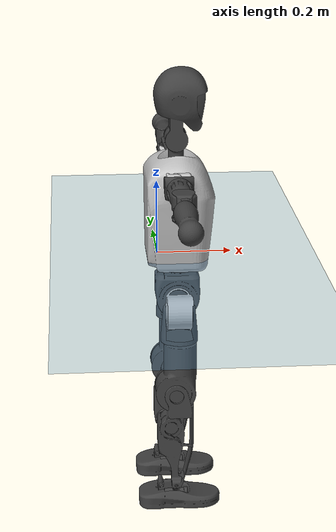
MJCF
<mujoco model="T1">
  <compiler angle="radian" assetdir="assets" balanceinertia="true" inertiafromgeom="false"/>

  <option timestep="0.005" density="1.2" viscosity="2e-05"/>

  <size nkey="1"/>

  <visual>
    <quality shadowsize="8192"/>
    <map shadowclip="0.5"/>
  </visual>

  <default>
    <default class="/">
      <joint armature="0.01" damping="0.01" frictionloss="0.1"/>
      <geom contype="0" conaffinity="0" group="1" solref="-1000 -80"/>
      <site size="0.01 0.005 0.005" group="5"/>
      <general forcelimited="true" biastype="affine" gainprm="25" biasprm="0 -25 -0.6"/>
      <default class="t1">
        <geom rgba="0.25 0.25 0.25 1"/>
        <default class="visual">
          <geom type="mesh" group="2"/>
        </default>
        <default class="collision">
          <geom group="3"/>
        </default>
        <default class="foot">
          <geom size="0.1115 0.05 0.015" type="box" condim="6" group="4" priority="1" solimp="0.015 1 0.015"/>
        </default>
        <default class="reward_collision_sphere">
          <geom group="5" rgba="1 0 0 1"/>
        </default>
      </default>
    </default>
  </default>

  <asset>
    <texture type="skybox" colorspace="auto" name="//unnamed_texture_0" builtin="gradient" rgb1="0.95 0.95 0.95" rgb2="0.95 0.95 0.95" width="100" height="600"/>
    <texture type="2d" colorspace="auto" name="texplane" builtin="checker" rgb1="0.345 0.575 0.748" rgb2="0.345 0.575 0.748" markrgb="1 1 1" width="512" height="512"/>
    <material name="MatPlane" class="/" texture="texplane" texuniform="true" texrepeat="2 2" specular="0.9"/>
    <mesh name="Trunk" class="/" file="Trunk.stl"/>
    <mesh name="H1" class="/" file="H1.stl"/>
    <mesh name="H2" class="/" file="H2.stl"/>
    <mesh name="AL1" class="/" file="AL1.stl"/>
    <mesh name="AL2" class="/" file="AL2.stl"/>
    <mesh name="AL3" class="/" file="AL3.stl"/>
    <mesh name="left_hand_link" class="/" file="left_hand_link.stl"/>
    <mesh name="AR1" class="/" file="AR1.stl"/>
    <mesh name="AR2" class="/" file="AR2.stl"/>
    <mesh name="AR3" class="/" file="AR3.stl"/>
    <mesh name="right_hand_link" class="/" file="right_hand_link.stl"/>
    <mesh name="Waist" class="/" file="Waist.stl"/>
    <mesh name="Hip_Pitch_Left" class="/" file="Hip_Pitch_Left.stl"/>
    <mesh name="Hip_Roll_Left" class="/" file="Hip_Roll_Left.stl"/>
    <mesh name="Hip_Yaw_Left" class="/" file="Hip_Yaw_Left.stl"/>
    <mesh name="Shank_Left" class="/" file="Shank_Left.stl"/>
    <mesh name="Ankle_Cross_Left" class="/" file="Ankle_Cross_Left.stl"/>
    <mesh name="left_foot_link" class="/" file="left_foot_link.stl"/>
    <mesh name="Hip_Pitch_Right" class="/" file="Hip_Pitch_Right.stl"/>
    <mesh name="Hip_Roll_Right" class="/" file="Hip_Roll_Right.stl"/>
    <mesh name="Hip_Yaw_Right" class="/" file="Hip_Yaw_Right.stl"/>
    <mesh name="Shank_Right" class="/" file="Shank_Right.stl"/>
    <mesh name="Ankle_Cross_Right" class="/" file="Ankle_Cross_Right.stl"/>
    <mesh name="right_foot_link" class="/" file="right_foot_link.stl"/>
  </asset>

  <worldbody>
    <geom name="floor" class="/" size="100 100 0.125" type="plane" group="0" material="MatPlane"/>
    <light name="toplight_shadow" class="/" pos="0 0 5" dir="0.0990148 0.0990148 -0.990148" type="directional" ambient="0.04 0.04 0.04" diffuse="0.55 0.55 0.55" specular="0.12 0.12 0.12"/>
    <light name="toplight_fill" class="/" pos="0 0 5" dir="0.0990148 0.0990148 -0.990148" type="directional" castshadow="false" ambient="0.04 0.04 0.04" diffuse="0.3 0.3 0.3" specular="0.08 0.08 0.08"/>
    <body name="trunk" childclass="t1" pos="-0.00084984 -7.61513e-05 -5.07143e-05" quat="1 -0.000140945 0.000164629 -0.000118588">
      <inertial pos="0.0473946 -0.000585606 0.110485" quat="0.999956 -0.000354511 -0.00933894 -0.00027475" mass="9.71279" diaginertia="0.0449218 0.0498469 0.0693223"/>
      <joint name="//unnamed_joint_0" type="free" armature="0" damping="0" frictionloss="0"/>
      <geom name="//unnamed_geom_1" class="visual" rgba="0.76 0.76 0.76 1" mesh="Trunk"/>
      <geom name="//unnamed_geom_2" class="collision" size="0.0707026 0.0942701 0.141405" pos="0.0520586 0 0.125217" type="box"/>
      <geom name="//unnamed_geom_3" class="reward_collision_sphere" size="0.108411" pos="0.0520586 0 0.104348"/>
      <geom name="//unnamed_geom_4" class="reward_collision_sphere" size="0.0141405" pos="0.0520586 0.0779437 0"/>
      <geom name="//unnamed_geom_5" class="reward_collision_sphere" size="0.0141405" pos="0.0520586 -0.0779437 0"/>
      <geom name="//unnamed_geom_6" class="reward_collision_sphere" size="0.0141405" pos="0.0520586 0.0981173 0.187826"/>
      <geom name="//unnamed_geom_7" class="reward_collision_sphere" size="0.0141405" pos="0.0520586 -0.0981173 0.187826"/>
      <site name="imu" pos="-0.00212487 0.00291581 -0.00344291" size="0.00942701"/>
      <camera name="track" pos="0 -1.83397 0" quat="0.707107 0.707107 0 0" mode="trackcom"/>
      <camera name="ego_camera" pos="0.105853 0 0.43826" quat="-0.5 -0.5 0.5 0.5"/>
      <body name="H1" pos="0.0525604 -0.000897645 0.25233" quat="1 2.29125e-06 -6.66433e-06 6.93091e-05">
        <inertial pos="-0.000386163 -0.00142475 0.0606895" quat="0.762686 -0.012173 0.000469651 0.646655" mass="0.369891" diaginertia="0.000118381 0.000143591 0.00018515"/>
        <joint name="AAHead_yaw" pos="0 0 0" axis="0.000877864 0.00105169 0.999999" range="-1.56481 1.56813" armature="0.00943132" damping="0.0103428" frictionloss="0.090111"/>
        <geom name="//unnamed_geom_8" class="visual" mesh="H1"/>
        <body name="H2" pos="-6.46079e-05 -0.000184857 0.0642592" quat="1 -0.000109341 -0.000153967 -0.000163224">
          <inertial pos="0.00584881 -0.000123703 0.102856" quat="0.98813 0.107732 -0.0747555 -0.0800304" mass="0.524972" diaginertia="0.00100432 0.00124751 0.002106"/>
          <joint name="Head_pitch" pos="0 0 0" axis="-0.000156931 -1 -0.000534054" range="-1.21598 0.351771" armature="0.00904999" damping="0.00527743" frictionloss="0.0942748"/>
          <geom name="//unnamed_geom_9" class="visual" mesh="H2"/>
          <geom name="//unnamed_geom_10" class="collision" size="0.0754161" pos="0.00867644 0 0.114782"/>
          <geom name="//unnamed_geom_11" class="reward_collision_sphere" size="0.0848431" pos="0.0173529 0 0.104348"/>
        </body>
      </body>
      <body name="AL1" pos="0.04986 0.098908 0.227658" quat="1 5.52348e-06 0.000439667 -2.04873e-06">
        <inertial pos="-0.00145542 0.0413741 0.000443192" quat="0.504073 0.496891 -0.50436 0.494602" mass="0.434808" diaginertia="0.000657361 0.000820098 0.000358532"/>
        <joint name="Left_Shoulder_Pitch" pos="0 0 0" axis="0.00577656 0.999983 -0.00107162" range="-3.32255 1.21749" armature="0.00901969" damping="0.009466" frictionloss="0.0979916"/>
        <geom name="//unnamed_geom_12" class="visual" rgba="0.76 0.76 0.76 1" mesh="AL1"/>
        <body name="AL2" pos="0.00153285 0.0439316 -0.00092465" quat="1 1.87644e-05 0.000199819 8.45494e-07">
          <inertial pos="0.00334328 0.0343958 -0.00117265" quat="0.487951 0.511656 -0.488166 0.51167" mass="0.135448" diaginertia="0.000196695 0.000227094 0.000221783"/>
          <joint name="Left_Shoulder_Roll" pos="0 0 0" axis="-1 -0.000110157 0.000168111" stiffness="0.000892358" range="-1.58889 1.74134" armature="0.00947795" damping="0.0092996" frictionloss="0.0935502"/>
          <geom name="//unnamed_geom_13" class="visual" mesh="AL2"/>
          <body name="AL3" pos="0.00139694 0.0558807 0.000208505" quat="1 -0.000139539 -0.00035327 0.000154252">
            <inertial pos="-0.000332014 0.078707 -0.000762744" quat="0.705216 0.708991 0.001467 0.000144774" mass="0.851904" diaginertia="0.00631808 0.00832581 0.000769812"/>
            <joint name="Left_Elbow_Pitch" pos="0 0 0" axis="0.00164808 -0.999998 0.00101828" stiffness="0.00208157" range="-2.27194 2.26309" armature="0.00954034" damping="0.0136668" frictionloss="0.0945527"/>
            <geom name="//unnamed_geom_14" class="visual" mesh="AL3"/>
            <geom name="//unnamed_geom_15" class="collision" size="0.028281 0.0707026" pos="0 0.0458492 0" quat="0.707105 0.707108 0 0" type="cylinder"/>
            <geom name="//unnamed_geom_16" class="reward_collision_sphere" size="0.0339372"/>
            <body name="left_hand_link" pos="-0.000277787 0.135046 0.000907585" quat="1 -0.000220545 0.000109738 -6.19061e-05">
              <inertial pos="0.000909312 0.100821 -1.46212e-05" quat="0.706874 0.707339 -0.000217062 -0.000635563" mass="0.276448" diaginertia="0.00401914 0.00525894 0.000264779"/>
              <joint name="Left_Elbow_Yaw" pos="0 0 0" axis="0.00348876 -0.00600524 0.999976" range="-2.46366 0.0210399" armature="0.00915643" damping="0.00730631" frictionloss="0.0919438"/>
              <geom name="//unnamed_geom_17" class="visual" mesh="left_hand_link"/>
              <geom name="//unnamed_geom_18" class="collision" size="0.028281 0.0824864" pos="0 0.119208 0" quat="0.707105 0.707108 0 0" type="cylinder"/>
              <geom name="//unnamed_geom_19" class="reward_collision_sphere" size="0.0471351"/>
              <geom name="//unnamed_geom_20" class="reward_collision_sphere" size="0.0329945" pos="0 0.100868 0"/>
              <geom name="//unnamed_geom_21" class="reward_collision_sphere" size="0.0329945" pos="0 0.197152 0"/>
            </body>
          </body>
        </body>
      </body>
      <body name="AR1" pos="0.0492236 -0.096554 0.228266" quat="1 0.000393537 0.000453043 -5.03224e-05">
        <inertial pos="-0.00179103 -0.0413136 -1.07955e-05" quat="0.504061 0.495867 -0.504353 0.495648" mass="0.44528" diaginertia="0.000675025 0.000839104 0.000364076"/>
        <joint name="Right_Shoulder_Pitch" pos="0 0 0" axis="0.000772531 -0.999998 -0.00184153" range="-1.23208 3.30953" armature="0.00906459" damping="0.00366263" frictionloss="0.0984706"/>
        <geom name="//unnamed_geom_22" class="visual" rgba="0.76 0.76 0.76 1" mesh="AR1"/>
        <body name="AR2" pos="-0.00101099 -0.0434213 -5.07159e-05" quat="1 -5.18411e-06 4.17488e-06 -1.29993e-05">
          <inertial pos="0.00412996 -0.0353569 -8.26305e-06" quat="0.512007 0.487779 -0.51162 0.488021" mass="0.132862" diaginertia="0.000195067 0.000219938 0.000214768"/>
          <joint name="Right_Shoulder_Roll" pos="0 0 0" axis="-0.999998 0.00196751 0.000957182" range="-1.72381 1.56456" armature="0.00912928" damping="0.00973693" frictionloss="0.0956636"/>
          <geom name="//unnamed_geom_23" class="visual" mesh="AR2"/>
          <body name="AR3" pos="-0.000882008 -0.056599 -0.00056124" quat="1 8.63359e-06 -7.98047e-05 -7.01492e-05">
            <inertial pos="-0.00076357 -0.078558 9.0572e-05" quat="0.708797 0.705401 -0.00309808 -0.00266984" mass="0.85322" diaginertia="0.00628307 0.00829872 0.000772303"/>
            <joint name="Right_Elbow_Pitch" pos="0 0 0" axis="-0.00439951 0.999988 -0.00192983" range="-2.27031 2.28604" armature="0.00939328" damping="0.00815135" frictionloss="0.0925765"/>
            <geom name="//unnamed_geom_24" class="visual" mesh="AR3"/>
            <geom name="//unnamed_geom_25" class="collision" size="0.028281 0.0707026" pos="0 -0.0458492 0" quat="0.707105 0.707108 0 0" type="cylinder"/>
            <geom name="//unnamed_geom_26" class="reward_collision_sphere" size="0.0339372"/>
            <body name="right_hand_link" pos="-0.00107803 -0.13566 -9.99684e-05" quat="1 3.68984e-05 8.11411e-05 -2.34961e-05">
              <inertial pos="-0.000833311 -0.100893 0.000910597" quat="0.706276 0.707937 -0.000126485 2.30599e-05" mass="0.272507" diaginertia="0.00401714 0.00524651 0.000267031"/>
              <joint name="Right_Elbow_Yaw" pos="0 0 0" axis="-0.00168256 -0.0016368 0.999997" range="-0.0196135 2.43987" armature="0.00942675" damping="0.0129095" frictionloss="0.0936384"/>
              <geom name="//unnamed_geom_27" class="visual" mesh="right_hand_link"/>
              <geom name="//unnamed_geom_28" class="collision" size="0.028281 0.0824864" pos="0 -0.119208 0" quat="0.707105 0.707108 0 0" type="cylinder"/>
              <geom name="//unnamed_geom_29" class="reward_collision_sphere" size="0.0471351"/>
              <geom name="//unnamed_geom_30" class="reward_collision_sphere" size="0.0329945" pos="0 -0.100868 0"/>
              <geom name="//unnamed_geom_31" class="reward_collision_sphere" size="0.0329945" pos="0 -0.197152 0"/>
            </body>
          </body>
        </body>
      </body>
      <body name="Waist" pos="0.0546538 -0.000685431 -0.120179" quat="1 -6.79964e-05 0.000155613 0.000110926">
        <inertial pos="0.00202421 -0.000570603 0.00791364" quat="0.983401 -0.00365628 -0.181404 0.00129683" mass="2.18715" diaginertia="0.00267514 0.00346216 0.00595016"/>
        <joint name="Waist" pos="0 0 0" axis="0.00253959 -0.000217453 0.999997" range="-1.55386 1.58895" armature="0.00949816" damping="0.0143569" frictionloss="0.0937863"/>
        <geom name="//unnamed_geom_32" class="visual" mesh="Waist"/>
        <body name="Hip_Pitch_Left" pos="1.4537e-05 0.0976135 0.000203405" quat="1 -2.22854e-05 6.88345e-05 -0.000102217">
          <inertial pos="0.000529229 -0.00655515 -0.0191653" quat="0.975369 0.22022 0.0117626 0.00447014" mass="0.856429" diaginertia="0.000900571 0.000943498 0.00156053"/>
          <joint name="Left_Hip_Pitch" pos="0 0 0" axis="-0.00101415 0.999999 -0.00112255" range="-1.79682 1.5741" armature="0.00909508" damping="0.00904499" frictionloss="0.0947031"/>
          <geom name="//unnamed_geom_33" class="visual" rgba="0.76 0.76 0.76 1" mesh="Hip_Pitch_Left"/>
          <body name="Hip_Roll_Left" pos="0.000573505 0.00032568 -0.0208415" quat="1 -3.3493e-06 -0.000313421 0.000152515">
            <inertial pos="0.000123507 -0.000434306 -0.0559707" quat="0.706612 -0.0057864 -0.00711852 0.707542" mass="0.321712" diaginertia="0.000841162 0.000975133 0.000635351"/>
            <joint name="Left_Hip_Roll" pos="0 0 0" axis="-0.999998 0.00139135 -0.00108393" range="-1.56005 0.198529" armature="0.00982653" damping="0.0124693" frictionloss="0.0965814"/>
            <geom name="//unnamed_geom_34" class="visual" mesh="Hip_Roll_Left"/>
            <geom name="//unnamed_geom_35" class="reward_collision_sphere" size="0.0518486"/>
            <body name="Hip_Yaw_Left" pos="-3.43658e-05 0.000784756 -0.0866087" quat="1 -9.20712e-06 -1.48711e-05 -4.66356e-05">
              <inertial pos="-0.00629261 -0.000537217 -0.0931387" quat="0.696635 -0.033361 -0.0301093 0.716017" mass="1.8098" diaginertia="0.0126416 0.0162673 0.00317845"/>
              <joint name="Left_Hip_Yaw" pos="0 0 0" axis="-0.000375987 -0.000327176 -1" range="-0.992794 1.00473" armature="0.00938251" damping="0.00846078" frictionloss="0.0925401"/>
              <geom name="//unnamed_geom_36" class="visual" mesh="Hip_Yaw_Left"/>
              <geom name="//unnamed_geom_37" class="collision" size="0.0471351 0.0754161" type="cylinder"/>
              <body name="Shank_Left" pos="-0.010832 -0.000161506 -0.139584" quat="1 -2.97113e-05 -9.82114e-05 -0.000114459">
                <inertial pos="-0.00580797 0.000436686 -0.12979" quat="0.997331 0.00266242 -0.0256897 0.0682865" mass="1.46249" diaginertia="0.017022 0.0226262 0.0022708"/>
                <joint name="Left_Knee_Pitch" pos="0 0 0" axis="-0.00556228 0.999984 0.000544578" stiffness="0.00073637" range="0.000949606 2.32728" armature="0.00977476" damping="0.0113165" frictionloss="0.0965422"/>
                <geom name="//unnamed_geom_38" class="visual" mesh="Shank_Left"/>
                <geom name="//unnamed_geom_39" class="collision" size="0.0471351 0.0707026" pos="0 0 -0.125217" type="cylinder"/>
                <geom name="//unnamed_geom_40" class="reward_collision_sphere" size="0.0612756"/>
                <body name="Ankle_Cross_Left" pos="-0.000905572 4.27657e-05 -0.292423" quat="1 2.83018e-06 3.18963e-05 -4.57867e-05">
                  <inertial pos="-0.00293073 0.000504009 -0.00841719" quat="0.442719 0.551113 0.551007 0.44347" mass="0.0604454" diaginertia="1.39741e-05 1.64232e-05 1.39602e-05"/>
                  <joint name="Left_Ankle_Pitch" pos="0 0 0" axis="-0.00409126 0.999991 -0.0006028" stiffness="0.000219239" range="-0.872172 0.365059" armature="0.00974629" damping="0.00983758" frictionloss="0.097562"/>
                  <geom name="//unnamed_geom_41" class="visual" mesh="Ankle_Cross_Left"/>
                  <body name="left_foot_link" pos="0.000296928 -4.83403e-05 -0.0118416" quat="1 8.23777e-05 -9.53777e-05 -7.25987e-05">
                    <inertial pos="-0.000603543 -0.000569047 -0.0094262" quat="0.00021342 0.621974 0.00100053 0.783037" mass="0.571027" diaginertia="0.00133228 0.00155499 0.00271624"/>
                    <joint name="Left_Ankle_Roll" pos="0 0 0" axis="-0.999999 -0.00042781 -0.00137746" range="-0.460131 0.455513" armature="0.00943905" damping="0.00376058" frictionloss="0.0923452"/>
                    <geom name="//unnamed_geom_42" class="visual" mesh="left_foot_link"/>
                    <geom name="left_foot" class="foot" size="0.102986 0.0465817 0.0147447" pos="0.00867644 0 -0.0156521"/>
                    <geom name="//unnamed_geom_44" class="reward_collision_sphere" size="0.0490205" pos="0.00867644 0 -0.0156521"/>
                    <geom name="//unnamed_geom_45" class="reward_collision_sphere" size="0.028281" pos="0.0824262 -0.0210906 -0.0156521"/>
                    <geom name="//unnamed_geom_46" class="reward_collision_sphere" size="0.028281" pos="-0.0607351 -0.0210906 -0.0156521"/>
                    <site name="left_foot" class="foot" pos="0.00867644 0 -0.0156521" size="0.00942701"/>
                  </body>
                </body>
              </body>
            </body>
          </body>
        </body>
        <body name="Hip_Pitch_Right" pos="1.4257e-05 -0.0974794 0.000923842" quat="1 -0.000386878 0.000300635 1.38875e-05">
          <inertial pos="2.83714e-05 0.0070756 -0.0184286" quat="0.973535 -0.228016 0.0148885 -0.00413783" mass="0.858127" diaginertia="0.000882058 0.000951995 0.00153202"/>
          <joint name="Right_Hip_Pitch" pos="0 0 0" axis="-0.000562628 -0.999993 0.00359546" range="-1.59332 1.80982" armature="0.0093018" damping="0.00647298" frictionloss="0.0927248"/>
          <geom name="//unnamed_geom_47" class="visual" rgba="0.76 0.76 0.76 1" mesh="Hip_Pitch_Right"/>
          <body name="Hip_Roll_Right" pos="0.000731594 -9.94366e-05 -0.0207267" quat="1 -8.0597e-06 6.14539e-06 -2.50491e-06">
            <inertial pos="0.00113043 0.000429914 -0.0564327" quat="0.706902 -0.00606678 -0.00583103 0.707262" mass="0.324398" diaginertia="0.000863408 0.000995523 0.000641712"/>
            <joint name="Right_Hip_Roll" pos="0 0 0" axis="-0.999975 0.00538524 0.00447774" stiffness="0.00315782" range="-0.200619 1.56377" armature="0.00987393" damping="0.00733048" frictionloss="0.0965701"/>
            <geom name="//unnamed_geom_48" class="visual" mesh="Hip_Roll_Right"/>
            <geom name="//unnamed_geom_49" class="reward_collision_sphere" size="0.0518486"/>
            <body name="Hip_Yaw_Right" pos="0.000262619 -0.000504279 -0.0854941" quat="1 -4.54257e-05 3.25912e-05 -4.18558e-05">
              <inertial pos="-0.00678715 -0.000159377 -0.092309" quat="0.711595 -0.029408 -0.0336887 0.701165" mass="1.81582" diaginertia="0.0126172 0.0165612 0.0032183"/>
              <joint name="Right_Hip_Yaw" pos="0 0 0" axis="-0.00392167 -0.00106278 -0.999992" range="-1.00137 1.0104" armature="0.00914954" damping="0.00783271" frictionloss="0.0944362"/>
              <geom name="//unnamed_geom_50" class="visual" mesh="Hip_Yaw_Right"/>
              <geom name="//unnamed_geom_51" class="collision" size="0.0471351 0.0754161" type="cylinder"/>
              <body name="Shank_Right" pos="-0.0128569 -0.00121702 -0.140769" quat="1 -9.75773e-05 1.30999e-05 6.29532e-05">
                <inertial pos="-0.0061557 0.00104985 -0.127095" quat="0.999245 0.000413145 -0.0251726 -0.0295787" mass="1.50159" diaginertia="0.0174588 0.0229971 0.00246949"/>
                <joint name="Right_Knee_Pitch" pos="0 0 0" axis="0.000502938 -0.999997 -0.00250923" range="-2.32319 -0.00579497" armature="0.00943155" damping="0.00794931" frictionloss="0.0975915"/>
                <geom name="//unnamed_geom_52" class="visual" mesh="Shank_Right"/>
                <geom name="//unnamed_geom_53" class="collision" size="0.0471351 0.0707026" pos="0 0 -0.125217" type="cylinder"/>
                <geom name="//unnamed_geom_54" class="reward_collision_sphere" size="0.0612756"/>
                <body name="Ankle_Cross_Right" pos="0.000426748 -0.000142299 -0.292641" quat="1 -7.78682e-06 -3.27842e-06 5.69302e-06">
                  <inertial pos="-0.00331699 0.000711294 -0.00812784" quat="0.444687 0.551844 0.549804 0.442082" mass="0.0615809" diaginertia="1.43207e-05 1.64757e-05 1.40768e-05"/>
                  <joint name="Right_Ankle_Pitch" pos="0 0 0" axis="0.00188281 -0.999993 0.00309116" stiffness="0.000942267" range="-0.367232 0.868209" armature="0.00906957" damping="0.00359556" frictionloss="0.0952031"/>
                  <geom name="//unnamed_geom_55" class="visual" mesh="Ankle_Cross_Right"/>
                  <body name="right_foot_link" pos="-0.000736634 -0.000748634 -0.0124909" quat="1 -2.00642e-05 -2.82888e-05 7.03793e-06">
                    <inertial pos="-0.000387153 -0.000371401 -0.00950167" quat="0.00436231 0.619981 -0.000444213 0.784604" mass="0.570745" diaginertia="0.00132448 0.00154476 0.00271697"/>
                    <joint name="Right_Ankle_Roll" pos="0 0 0" axis="-1 -6.65552e-05 0.00017867" range="-0.434203 0.456503" armature="0.00919724" damping="0.00412774" frictionloss="0.0982126"/>
                    <geom name="//unnamed_geom_56" class="visual" mesh="right_foot_link"/>
                    <geom name="right_foot" class="foot" size="0.0971406 0.0444865 0.0139927" pos="0.00867644 0 -0.0156521"/>
                    <geom name="//unnamed_geom_58" class="reward_collision_sphere" size="0.0377081"/>
                    <geom name="//unnamed_geom_59" class="reward_collision_sphere" size="0.028281" pos="0.00867644 0 -0.0156521"/>
                    <geom name="//unnamed_geom_60" class="reward_collision_sphere" size="0.028281" pos="0.0824262 0.0210906 -0.0156521"/>
                    <geom name="//unnamed_geom_61" class="reward_collision_sphere" size="0.028281" pos="-0.0607351 0.0210906 -0.0156521"/>
                    <site name="right_foot" class="foot" pos="0.00867644 0 -0.0156521" size="0.00942701"/>
                  </body>
                </body>
              </body>
            </body>
          </body>
        </body>
      </body>
    </body>
  </worldbody>

  <contact>
    <pair class="/" geom1="floor" geom2="left_foot" name="//unnamed_contact_0"/>
    <pair class="/" geom1="floor" geom2="right_foot" name="//unnamed_contact_1"/>
  </contact>

  <actuator>
    <general name="AAHead_yaw" class="/" joint="AAHead_yaw" forcerange="-6.41294 6.41294" gainprm="22.9385" biasprm="0 -22.9385 -0.560719"/>
    <general name="Head_pitch" class="/" joint="Head_pitch" forcerange="-6.71877 6.71877" gainprm="22.9385" biasprm="0 -22.9385 -0.560719"/>
    <general name="Left_Shoulder_Pitch" class="/" joint="Left_Shoulder_Pitch" forcerange="-16.8129 16.8129" gainprm="22.9385" biasprm="0 -22.9385 -0.560719"/>
    <general name="Left_Shoulder_Roll" class="/" joint="Left_Shoulder_Roll" forcerange="-17.0743 17.0743" gainprm="22.9385" biasprm="0 -22.9385 -0.560719"/>
    <general name="Left_Elbow_Pitch" class="/" joint="Left_Elbow_Pitch" forcerange="-16.6161 16.6161" gainprm="22.9385" biasprm="0 -22.9385 -0.560719"/>
    <general name="Left_Elbow_Yaw" class="/" joint="Left_Elbow_Yaw" forcerange="-16.5118 16.5118" gainprm="22.9385" biasprm="0 -22.9385 -0.560719"/>
    <general name="Right_Shoulder_Pitch" class="/" joint="Right_Shoulder_Pitch" forcerange="-17.4485 17.4485" gainprm="22.9385" biasprm="0 -22.9385 -0.560719"/>
    <general name="Right_Shoulder_Roll" class="/" joint="Right_Shoulder_Roll" forcerange="-16.7615 16.7615" gainprm="22.9385" biasprm="0 -22.9385 -0.560719"/>
    <general name="Right_Elbow_Pitch" class="/" joint="Right_Elbow_Pitch" forcerange="-16.9684 16.9684" gainprm="22.9385" biasprm="0 -22.9385 -0.560719"/>
    <general name="Right_Elbow_Yaw" class="/" joint="Right_Elbow_Yaw" forcerange="-17.1339 17.1339" gainprm="22.9385" biasprm="0 -22.9385 -0.560719"/>
    <general name="Waist" class="/" joint="Waist" forcerange="-27.9387 27.9387" gainprm="22.9385" biasprm="0 -22.9385 -0.560719"/>
    <general name="Left_Hip_Pitch" class="/" joint="Left_Hip_Pitch" forcerange="-42.3498 42.3498" gainprm="22.9385" biasprm="0 -22.9385 -0.560719"/>
    <general name="Left_Hip_Roll" class="/" joint="Left_Hip_Roll" forcerange="-28.8131 28.8131" gainprm="22.9385" biasprm="0 -22.9385 -0.560719"/>
    <general name="Left_Hip_Yaw" class="/" joint="Left_Hip_Yaw" forcerange="-29.0081 29.0081" gainprm="22.9385" biasprm="0 -22.9385 -0.560719"/>
    <general name="Left_Knee_Pitch" class="/" joint="Left_Knee_Pitch" forcerange="-54.8146 54.8146" gainprm="22.9385" biasprm="0 -22.9385 -0.560719"/>
    <general name="Left_Ankle_Pitch" class="/" joint="Left_Ankle_Pitch" forcerange="-19.4382 19.4382" gainprm="22.9385" biasprm="0 -22.9385 -0.560719"/>
    <general name="Left_Ankle_Roll" class="/" joint="Left_Ankle_Roll" forcerange="-14.3079 14.3079" gainprm="22.9385" biasprm="0 -22.9385 -0.560719"/>
    <general name="Right_Hip_Pitch" class="/" joint="Right_Hip_Pitch" forcerange="-42.7694 42.7694" gainprm="22.9385" biasprm="0 -22.9385 -0.560719"/>
    <general name="Right_Hip_Roll" class="/" joint="Right_Hip_Roll" forcerange="-27.773 27.773" gainprm="22.9385" biasprm="0 -22.9385 -0.560719"/>
    <general name="Right_Hip_Yaw" class="/" joint="Right_Hip_Yaw" forcerange="-28.4751 28.4751" gainprm="22.9385" biasprm="0 -22.9385 -0.560719"/>
    <general name="Right_Knee_Pitch" class="/" joint="Right_Knee_Pitch" forcerange="-57.5696 57.5696" gainprm="22.9385" biasprm="0 -22.9385 -0.560719"/>
    <general name="Right_Ankle_Pitch" class="/" joint="Right_Ankle_Pitch" forcerange="-18.9132 18.9132" gainprm="22.9385" biasprm="0 -22.9385 -0.560719"/>
    <general name="Right_Ankle_Roll" class="/" joint="Right_Ankle_Roll" forcerange="-14.0952 14.0952" gainprm="22.9385" biasprm="0 -22.9385 -0.560719"/>
  </actuator>

  <sensor>
    <gyro site="imu" name="imu_angular_velocity"/>
    <velocimeter site="imu" name="imu_linear_velocity"/>
    <framelinvel objtype="site" objname="left_foot" name="left_foot_global_linear_velocity"/>
    <framelinvel objtype="site" objname="right_foot" name="right_foot_global_linear_velocity"/>
  </sensor>

  <keyframe>
    <key name="home" qpos="0 0 0.6385 1 0 0 0 0 0 0 1.4 0 -0.4 0 -1.4 0 0.4 0 -0.4 0 0 0.8 -0.4 0 0.4 0 0 -0.8 0.4 0"/>
  </keyframe>
</mujoco>
